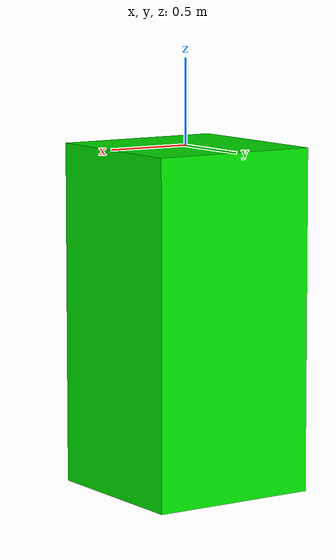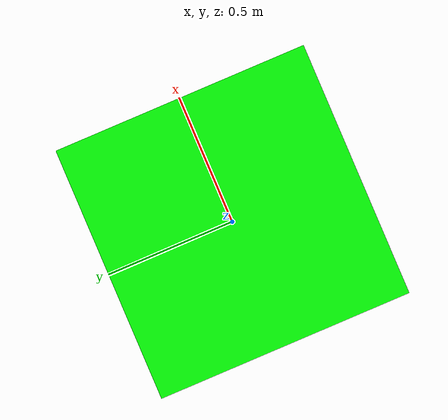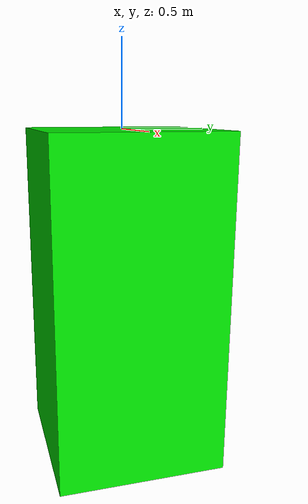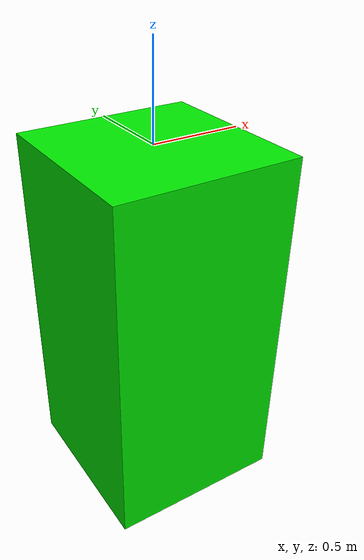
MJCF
<mujoco>
    <option timestep="0.001" integrator="Euler">
		<flag gravity="disable" energy="enable"/>
	</option>

    <visual>
        <global offheight="1024" offwidth="1024" azimuth="90" elevation="-30"/>
    </visual>
    <statistic extent="5" center="0 0 0"/>

    <compiler autolimits="true"/>
    <worldbody>
        <light diffuse=".5 .5 .5" pos="0 0 3" dir="0 0 -1"/>
        <geom type="plane" pos="0 0 -10" size="3 3 0.1" rgba=".9 0 0 1"/>
        <body name="root" pos="0 0 -1" euler="0 0 0">
            <joint name="joint_y" type="hinge" pos="0 0 1" axis="0 -1 0"/>
            <joint name="joint_x" type="hinge" pos="0 0 1" axis="-1 0 0"/>
            <joint name="joint_z_twist" type="hinge" pos="0 0 1" range="-0.000001 0.000001" axis="0 0 -1"/>
            <inertial pos="0 0 0" euler="0 0 0" mass="1" diaginertia="0.66667 0.66667 0.66667"/>
            <geom type="box" size="0.5 0.5 1" rgba="0 .9 0 1" mass="1"/>
        </body>
    </worldbody>
</mujoco>
